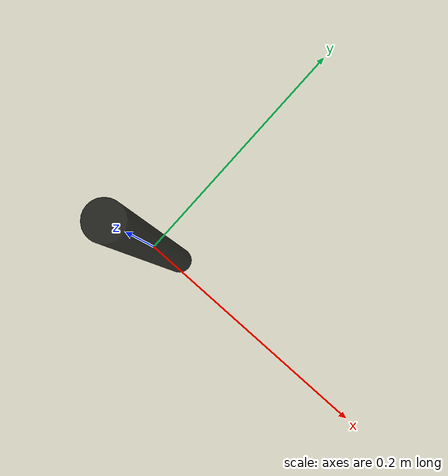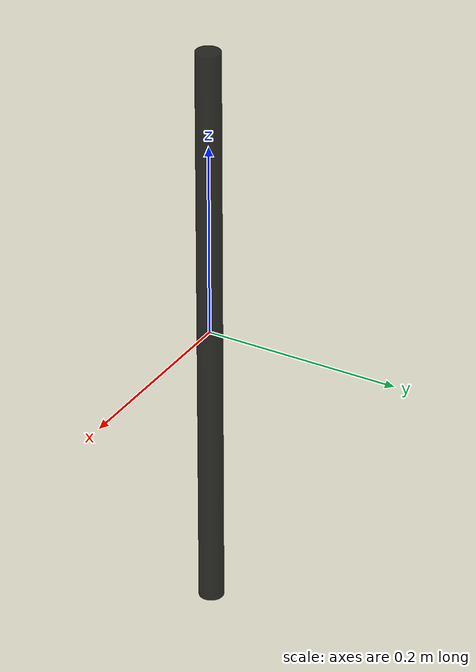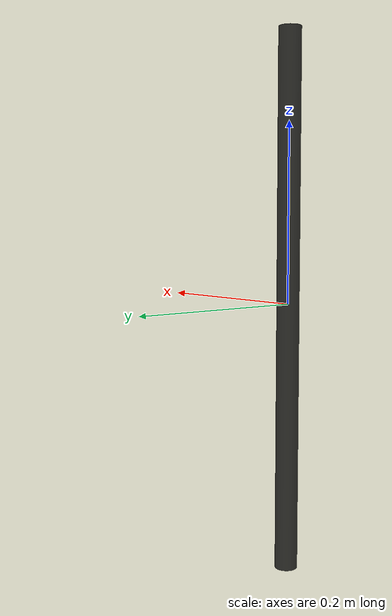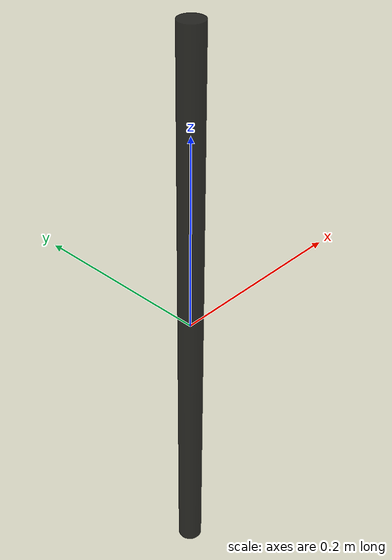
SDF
<?xml version='1.0'?>
<sdf version='1.6'>
  <model name='post'>
    <link name='link'>
      <self_collide>0</self_collide>
      <kinematic>0</kinematic>
      <pose frame=''>0 0 0 0 0 0</pose>
      <visual name='visual'>
        <geometry>
          <cylinder>
            <radius>0.0125</radius>
            <length>0.600</length>
          </cylinder>
        </geometry>
        <material>
          <ambient>0.0 0.0 0.0 0.8</ambient>
        </material>
        <transparency>0</transparency>
      </visual>
      <gravity>0</gravity>
    </link>
  </model>
</sdf>
